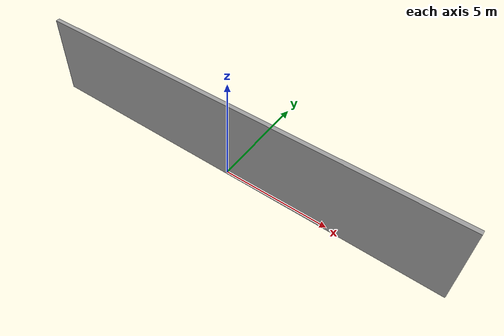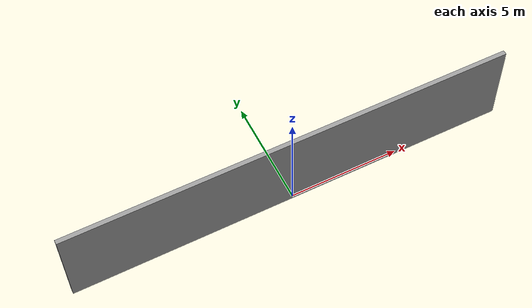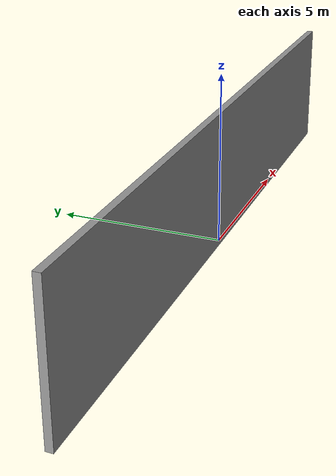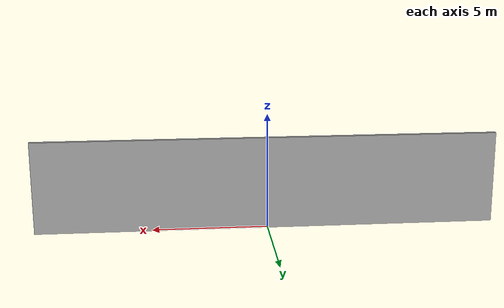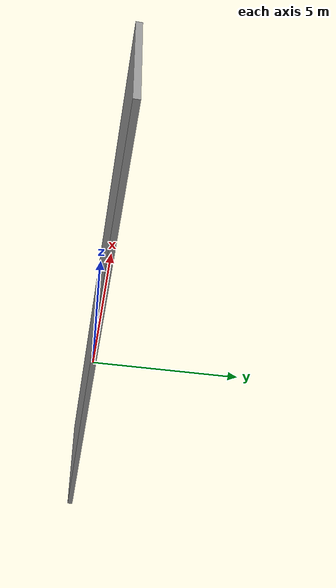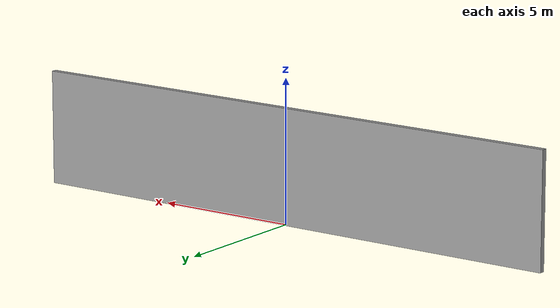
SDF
<?xml version="1.0" ?>
<sdf version="1.5">
  <model name="grey_wall">
    <static>true</static>
    <link name="link">
      <pose>0 0 2 0 0 0</pose>
      <collision name="collision">
        <geometry>
          <box>
            <size>20.0 0.2 4</size>
          </box>
        </geometry>
      </collision>
      <visual name="visual">
        <cast_shadows>false</cast_shadows>
        <geometry>
          <box>
            <size>20.0 0.2 4</size>
          </box>
        </geometry>
        <material>
          <script>
            <uri>model://extwall/materials/scripts</uri>
            <uri>model://extwall/materials/textures</uri>
            <name>vrc/grey_wall</name>
          </script>
        </material>
      </visual>
    </link>
  </model>
</sdf>
